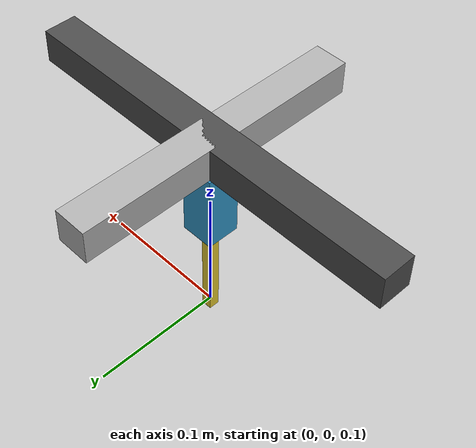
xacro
<?xml version="1.0"?>
<robot xmlns:xacro="http://www.ros.org/wiki/xacro" name="lab_gantry">
<xacro:arg name="controllers" default=""/>
<link name="world"/>
<xacro:macro name="body" params="name size mass color">
<link name="${name}"><inertial><mass value="${mass}"/><inertia ixx="0.001" ixy="0" ixz="0" iyy="0.001" iyz="0" izz="0.001"/></inertial><visual><geometry><box size="${size}"/></geometry><material name="${name}_color"><color rgba="${color}"/></material></visual><collision><geometry><box size="${size}"/></geometry></collision></link>
</xacro:macro>
<xacro:body name="base" size="0.30 0.025 0.025" mass="2" color="0.3 0.3 0.3 1"/>
<joint name="anchor" type="fixed"><parent link="world"/><child link="base"/><origin xyz="0 0 0.25"/></joint>
<xacro:body name="x_carriage" size="0.025 0.22 0.025" mass="0.5" color="0.7 0.7 0.7 1"/>
<xacro:body name="y_carriage" size="0.025 0.025 0.06" mass="0.2" color="0.2 0.6 0.8 1"/>
<xacro:body name="pipette" size="0.008 0.008 0.10" mass="0.05" color="0.9 0.8 0.2 1"/>
<xacro:macro name="axis" params="name parent child xyz axis upper initial">
<joint name="${name}" type="prismatic"><parent link="${parent}"/><child link="${child}"/><origin xyz="${xyz}"/><axis xyz="${axis}"/><limit lower="0" upper="${upper}" effort="100" velocity="0.15"/><dynamics damping="1" friction="0.1"/></joint>
</xacro:macro>
<xacro:axis name="x_joint" parent="base" child="x_carriage" xyz="0 0 0" axis="1 0 0" upper="0.22" initial="0.02"/>
<xacro:axis name="y_joint" parent="x_carriage" child="y_carriage" xyz="0 0 -0.045" axis="0 1 0" upper="0.16" initial="0.02"/>
<xacro:axis name="z_joint" parent="y_carriage" child="pipette" xyz="0 0 -0.06" axis="0 0 -1" upper="0.08" initial="0.01"/>
<ros2_control name="GantrySim" type="system"><hardware><plugin>gz_ros2_control/GazeboSimSystem</plugin></hardware>
<xacro:macro name="controlled" params="name upper initial"><joint name="${name}"><command_interface name="position"><param name="min">0</param><param name="max">${upper}</param></command_interface><state_interface name="position"><param name="initial_value">${initial}</param></state_interface><state_interface name="velocity"/></joint></xacro:macro>
<xacro:controlled name="x_joint" upper="0.22" initial="0.02"/><xacro:controlled name="y_joint" upper="0.16" initial="0.02"/><xacro:controlled name="z_joint" upper="0.08" initial="0.01"/>
</ros2_control>
<gazebo><plugin filename="gz_ros2_control-system" name="gz_ros2_control::GazeboSimROS2ControlPlugin"><parameters>$(arg controllers)</parameters><position_proportional_gain>0.5</position_proportional_gain></plugin></gazebo>
</robot>
